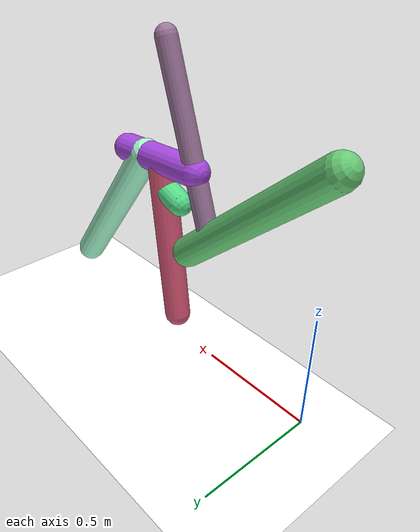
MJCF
<mujoco model="morphology">
  <option timestep="0.01"/>
  <default>
    <default class="/"/>
    <default class="0/"/>
    <default class="0/1/"/>
    <default class="0/1/2/"/>
    <default class="0/1/2/3/"/>
    <default class="0/1/2/3/4/"/>
    <default class="0/1/2/5/"/>
  </default>
  <asset>
    <texture name="texplane" type="2d" builtin="checker" rgb1="0.10000000000000001 0.20000000000000001 0.29999999999999999" rgb2="0.20000000000000001 0.29999999999999999 0.40000000000000002" width="300" height="300"/>
    <material name="MatPlane" class="/" texture="texplane" texrepeat="20 20" specular="1" shininess="1" reflectance="0.5"/>
  </asset>
  <worldbody>
    <light name="//unnamed_light_0" class="/" directional="true" pos="0 0 1.5" dir="0 0 -1.3" cutoff="100" exponent="1" diffuse="1 1 1" specular="0.10000000000000001 0.10000000000000001 0.10000000000000001"/>
    <geom name="ground" class="/" type="plane" size="15 15 0.5" material="MatPlane" rgba="1 1 1 1"/>
    <site name="body" class="/" size="9.9999999999999995e-07 9.9999999999999995e-07 9.9999999999999995e-07" pos="0 0 1.0528294205665589"/>
    <body pos="0 0 1.0528294205665589" name="0/">
      <joint name="0/rootx/" class="/" type="slide" axis="1 0 0" limited="false" stiffness="0" armature="0" damping="0"/>
      <joint name="0/rootz/" class="/" type="slide" axis="0 0 1" limited="false" stiffness="0" armature="0" damping="0"/>
      <joint name="0/rooty/" class="/" type="hinge" axis="0 1 0" limited="false" stiffness="0" armature="0" damping="0"/>
      <geom name="0/geom" class="0/" type="capsule" contype="1" conaffinity="1" condim="3" size="0.064933431837231728" rgba="0.40451412237440276 0.7933401636620111 0.46355108110684984 1" friction="0.59999999999999998 0.10000000000000001 0.10000000000000001" fromto="0 0 0 0.66131539441467702 0 -0.59153030300634146"/>
      <site name="0/end0" class="0/" size="0.0050000000000000001" pos="0.66131539441467702 0 -0.59153030300634146"/>
      <site name="0/attach1" class="0/" size="9.9999999999999995e-07 9.9999999999999995e-07 9.9999999999999995e-07" pos="0.53620750576916698 0 -0.47962438352526954"/>
      <body pos="0.53620750576916698 0 -0.47962438352526954" name="0/1/">
        <joint name="0/1/joint/" class="0/" type="hinge" axis="0 1 0" limited="true" range="-48.51632752695977 48.51632752695977"/>
        <geom name="0/1/geom" class="0/1/" type="capsule" contype="1" conaffinity="1" condim="3" size="0.04268731164035483" rgba="0.6361895902623228 0.47471312761309803 0.62476002800192576 1" friction="0.59999999999999998 0.10000000000000001 0.10000000000000001" fromto="0 0 0 0.24972810969869752 0 0.72474199520464211"/>
        <site name="0/1/end1" class="0/1/" size="0.0050000000000000001" pos="0.24972810969869752 0 0.72474199520464211"/>
        <site name="0/1/attach2" class="0/1/" size="9.9999999999999995e-07 9.9999999999999995e-07 9.9999999999999995e-07" pos="0.088442652092786539 0 0.2566715625896176"/>
        <body pos="0.088442652092786539 0 0.2566715625896176" name="0/1/2/">
          <joint name="0/1/2/joint/" class="0/1/" type="hinge" axis="0 1 0" limited="true" range="-65.575108095705588 65.575108095705588"/>
          <geom name="0/1/2/geom" class="0/1/2/" type="capsule" contype="1" conaffinity="1" condim="3" size="0.059399738438364894" rgba="0.65363084016938355 0.28218649044519606 0.87795565734381709 1" friction="0.59999999999999998 0.10000000000000001 0.10000000000000001" fromto="0 0 0 0.42120202079192004 0 -0.029341869036348389"/>
          <site name="0/1/2/end2" class="0/1/2/" size="0.0050000000000000001" pos="0.42120202079192004 0 -0.029341869036348389"/>
          <site name="0/1/2/attach3" class="0/1/2/" size="9.9999999999999995e-07 9.9999999999999995e-07 9.9999999999999995e-07" pos="0.2035939474933795 0 -0.01418280694074611"/>
          <body pos="0.2035939474933795 0 -0.01418280694074611" name="0/1/2/3/">
            <joint name="0/1/2/3/joint/" class="0/1/2/" type="hinge" axis="0 1 0" limited="true" range="-52.122163631646409 52.122163631646409"/>
            <geom name="0/1/2/3/geom" class="0/1/2/3/" type="capsule" contype="1" conaffinity="1" condim="3" size="0.056247348096820984" rgba="0.91073349809683513 0.36706953799518116 0.49360315157093326 1" friction="0.59999999999999998 0.10000000000000001 0.10000000000000001" fromto="0 0 0 -0.10028887614830295 0 -0.71569381870699411"/>
            <site name="0/1/2/3/end3" class="0/1/2/3/" size="0.0050000000000000001" pos="-0.10028887614830295 0 -0.71569381870699411"/>
            <site name="0/1/2/3/attach4" class="0/1/2/3/" size="9.9999999999999995e-07 9.9999999999999995e-07 9.9999999999999995e-07" pos="-0.015930932176793318 0 -0.11368827853161928"/>
            <body pos="-0.015930932176793318 0 -0.11368827853161928" name="0/1/2/3/4/">
              <joint name="0/1/2/3/4/joint/" class="0/1/2/3/" type="hinge" axis="0 1 0" limited="true" range="-60.801156700657458 60.801156700657458"/>
              <geom name="0/1/2/3/4/geom" class="0/1/2/3/4/" type="capsule" contype="1" conaffinity="1" condim="3" size="0.051475669159917595" rgba="0.33428960440387645 0.86198441785107294 0.5377508419583481 1" friction="0.59999999999999998 0.10000000000000001 0.10000000000000001" fromto="0 0 0 -0.10107952046332014 0 -0.037627643464793414"/>
              <site name="0/1/2/3/4/end4" class="0/1/2/3/4/" size="0.0050000000000000001" pos="-0.10107952046332014 0 -0.037627643464793414"/>
            </body>
          </body>
          <site name="0/1/2/attach5" class="0/1/2/" size="9.9999999999999995e-07 9.9999999999999995e-07 9.9999999999999995e-07" pos="0.30168351221123879 0 -0.021015944057164854"/>
          <body pos="0.30168351221123879 0 -0.021015944057164854" name="0/1/2/5/">
            <geom name="0/1/2/5/geom" class="0/1/2/5/" type="capsule" contype="1" conaffinity="1" condim="3" size="0.064212678252453415" rgba="0.65305296741800745 0.97895022974972801 0.80826019498800672 1" friction="0.59999999999999998 0.10000000000000001 0.10000000000000001" fromto="0 0 0 0.4941169366692042 0 -0.68227659875708901"/>
            <site name="0/1/2/5/end5" class="0/1/2/5/" size="0.0050000000000000001" pos="0.4941169366692042 0 -0.68227659875708901"/>
          </body>
        </body>
      </body>
      <camera name="0/side" class="0/" mode="trackcom" pos="0.40000000000000002 -4 0.20000000000000001" quat="0.70699999999999996 0.70699999999999996 0 0"/>
    </body>
  </worldbody>
  <actuator>
    <motor name="0/1/motor" class="0/1/" ctrllimited="true" ctrlrange="-1 1" gear="76" joint="0/1/joint/"/>
    <motor name="0/1/2/motor" class="0/1/2/" ctrllimited="true" ctrlrange="-1 1" gear="51" joint="0/1/2/joint/"/>
    <motor name="0/1/2/3/motor" class="0/1/2/3/" ctrllimited="true" ctrlrange="-1 1" gear="67" joint="0/1/2/3/joint/"/>
    <motor name="0/1/2/3/4/motor" class="0/1/2/3/4/" ctrllimited="true" ctrlrange="-1 1" gear="57" joint="0/1/2/3/4/joint/"/>
  </actuator>
  <sensor>
    <subtreelinvel name="velocity" body="0/"/>
  </sensor>
</mujoco>
